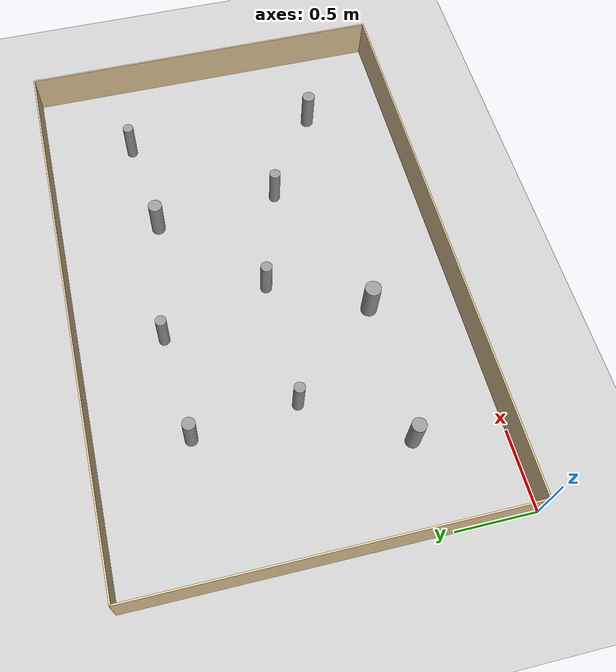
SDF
<sdf version="1.4">
 <world name="default">
  <scene><ambient>0.5 0.5 0.5 1.0</ambient><shadows>0</shadows></scene>
  <include><uri>model://ground_plane</uri></include>
  <include><uri>model://sun</uri></include>
  <model name="unit_cylinder1_1">
   <link name="link">
    <pose>0.565 0.565 0.14 0 -0 0</pose>
    <inertial>
     <mass>1</mass>
     <inertia><ixx>0.145833</ixx><ixy>0</ixy><ixz>0</ixz><iyy>0.145833</iyy><iyz>0</iyz><izz>0.125</izz></inertia>
    </inertial>
    <visual name="visual">
     <geometry><cylinder><radius>0.045</radius><length>0.28</length></cylinder></geometry>
     <material>
      <script><name>Gazebo/Grey</name><uri>file://media/materials/scripts/gazebo.material</uri></script>
      <ambient>0.3 0.3 0.3 1</ambient>
      <diffuse>0.7 0.7 0.7 1</diffuse>
      <specular>0.01 0.01 0.01 1</specular>
      <emissive>0 0 0 1</emissive>
      <shader type="vertex"><normal_map>__default__</normal_map></shader>
     </material>
    </visual>
    <collision name="collision">
     <geometry><cylinder><radius>0.035</radius><length>0.28</length></cylinder></geometry>
     <surface>
      <friction>
       <ode><mu>1</mu><mu2>1</mu2><fdir1>0 0 0</fdir1><slip1>0</slip1><slip2>0</slip2></ode>
       <torsional>
        <coefficient>1</coefficient>
        <patch_radius>0</patch_radius>
        <surface_radius>0</surface_radius>
        <use_patch_radius>1</use_patch_radius>
        <ode><slip>0</slip></ode>
       </torsional>
      </friction>
      <bounce><restitution_coefficient>0</restitution_coefficient><threshold>1e+06</threshold></bounce>
      <contact>
       <collide_without_contact>0</collide_without_contact>
       <collide_without_contact_bitmask>1</collide_without_contact_bitmask>
       <collide_bitmask>1</collide_bitmask>
       <ode>
        <soft_cfm>0</soft_cfm>
        <soft_erp>0.2</soft_erp>
        <kp>1e+13</kp>
        <kd>1</kd>
        <max_vel>0.01</max_vel>
        <min_depth>0</min_depth>
       </ode>
       <bullet>
        <split_impulse>1</split_impulse>
        <split_impulse_penetration_threshold>-0.01</split_impulse_penetration_threshold>
        <soft_cfm>0</soft_cfm>
        <soft_erp>0.2</soft_erp>
        <kp>1e+13</kp>
        <kd>1</kd>
       </bullet>
      </contact>
     </surface>
    </collision>
   </link>
   <static>1</static>
  </model>
  <model name="unit_cylinder1_2">
   <link name="link">
    <pose>1.47 0.565 0.14 0 -0 0</pose>
    <inertial>
     <mass>1</mass>
     <inertia><ixx>0.145833</ixx><ixy>0</ixy><ixz>0</ixz><iyy>0.145833</iyy><iyz>0</iyz><izz>0.125</izz></inertia>
    </inertial>
    <visual name="visual">
     <geometry><cylinder><radius>0.052</radius><length>0.28</length></cylinder></geometry>
     <material>
      <script><name>Gazebo/Grey</name><uri>file://media/materials/scripts/gazebo.material</uri></script>
      <ambient>0.3 0.3 0.3 1</ambient>
      <diffuse>0.7 0.7 0.7 1</diffuse>
      <specular>0.01 0.01 0.01 1</specular>
      <emissive>0 0 0 1</emissive>
      <shader type="vertex"><normal_map>__default__</normal_map></shader>
     </material>
    </visual>
    <collision name="collision">
     <geometry><cylinder><radius>0.035</radius><length>0.28</length></cylinder></geometry>
     <surface>
      <friction>
       <ode><mu>1</mu><mu2>1</mu2><fdir1>0 0 0</fdir1><slip1>0</slip1><slip2>0</slip2></ode>
       <torsional>
        <coefficient>1</coefficient>
        <patch_radius>0</patch_radius>
        <surface_radius>0</surface_radius>
        <use_patch_radius>1</use_patch_radius>
        <ode><slip>0</slip></ode>
       </torsional>
      </friction>
      <bounce><restitution_coefficient>0</restitution_coefficient><threshold>1e+06</threshold></bounce>
      <contact>
       <collide_without_contact>0</collide_without_contact>
       <collide_without_contact_bitmask>1</collide_without_contact_bitmask>
       <collide_bitmask>1</collide_bitmask>
       <ode>
        <soft_cfm>0</soft_cfm>
        <soft_erp>0.2</soft_erp>
        <kp>1e+13</kp>
        <kd>1</kd>
        <max_vel>0.01</max_vel>
        <min_depth>0</min_depth>
       </ode>
       <bullet>
        <split_impulse>1</split_impulse>
        <split_impulse_penetration_threshold>-0.01</split_impulse_penetration_threshold>
        <soft_cfm>0</soft_cfm>
        <soft_erp>0.2</soft_erp>
        <kp>1e+13</kp>
        <kd>1</kd>
       </bullet>
      </contact>
     </surface>
    </collision>
   </link>
   <static>1</static>
  </model>
  <model name="unit_cylinder1_3">
   <link name="link">
    <pose>3.04 0.565 0.14 0 -0 0</pose>
    <inertial>
     <mass>1</mass>
     <inertia><ixx>0.145833</ixx><ixy>0</ixy><ixz>0</ixz><iyy>0.145833</iyy><iyz>0</iyz><izz>0.125</izz></inertia>
    </inertial>
    <visual name="visual">
     <geometry><cylinder><radius>0.042</radius><length>0.28</length></cylinder></geometry>
     <material>
      <script><name>Gazebo/Grey</name><uri>file://media/materials/scripts/gazebo.material</uri></script>
      <ambient>0.3 0.3 0.3 1</ambient>
      <diffuse>0.7 0.7 0.7 1</diffuse>
      <specular>0.01 0.01 0.01 1</specular>
      <emissive>0 0 0 1</emissive>
      <shader type="vertex"><normal_map>__default__</normal_map></shader>
     </material>
    </visual>
    <collision name="collision">
     <geometry><cylinder><radius>0.035</radius><length>0.28</length></cylinder></geometry>
     <surface>
      <friction>
       <ode><mu>1</mu><mu2>1</mu2><fdir1>0 0 0</fdir1><slip1>0</slip1><slip2>0</slip2></ode>
       <torsional>
        <coefficient>1</coefficient>
        <patch_radius>0</patch_radius>
        <surface_radius>0</surface_radius>
        <use_patch_radius>1</use_patch_radius>
        <ode><slip>0</slip></ode>
       </torsional>
      </friction>
      <bounce><restitution_coefficient>0</restitution_coefficient><threshold>1e+06</threshold></bounce>
      <contact>
       <collide_without_contact>0</collide_without_contact>
       <collide_without_contact_bitmask>1</collide_without_contact_bitmask>
       <collide_bitmask>1</collide_bitmask>
       <ode>
        <soft_cfm>0</soft_cfm>
        <soft_erp>0.2</soft_erp>
        <kp>1e+13</kp>
        <kd>1</kd>
        <max_vel>0.01</max_vel>
        <min_depth>0</min_depth>
       </ode>
       <bullet>
        <split_impulse>1</split_impulse>
        <split_impulse_penetration_threshold>-0.01</split_impulse_penetration_threshold>
        <soft_cfm>0</soft_cfm>
        <soft_erp>0.2</soft_erp>
        <kp>1e+13</kp>
        <kd>1</kd>
       </bullet>
      </contact>
     </surface>
    </collision>
   </link>
   <static>1</static>
  </model>
  <model name="unit_cylinder1_4">
   <link name="link">
    <pose>0.94 1.17 0.14 0 -0 0</pose>
    <inertial>
     <mass>1</mass>
     <inertia><ixx>0.145833</ixx><ixy>0</ixy><ixz>0</ixz><iyy>0.145833</iyy><iyz>0</iyz><izz>0.125</izz></inertia>
    </inertial>
    <visual name="visual">
     <geometry><cylinder><radius>0.035</radius><length>0.28</length></cylinder></geometry>
     <material>
      <script><name>Gazebo/Grey</name><uri>file://media/materials/scripts/gazebo.material</uri></script>
      <ambient>0.3 0.3 0.3 1</ambient>
      <diffuse>0.7 0.7 0.7 1</diffuse>
      <specular>0.01 0.01 0.01 1</specular>
      <emissive>0 0 0 1</emissive>
      <shader type="vertex"><normal_map>__default__</normal_map></shader>
     </material>
    </visual>
    <collision name="collision">
     <geometry><cylinder><radius>0.035</radius><length>0.28</length></cylinder></geometry>
     <surface>
      <friction>
       <ode><mu>1</mu><mu2>1</mu2><fdir1>0 0 0</fdir1><slip1>0</slip1><slip2>0</slip2></ode>
       <torsional>
        <coefficient>1</coefficient>
        <patch_radius>0</patch_radius>
        <surface_radius>0</surface_radius>
        <use_patch_radius>1</use_patch_radius>
        <ode><slip>0</slip></ode>
       </torsional>
      </friction>
      <bounce><restitution_coefficient>0</restitution_coefficient><threshold>1e+06</threshold></bounce>
      <contact>
       <collide_without_contact>0</collide_without_contact>
       <collide_without_contact_bitmask>1</collide_without_contact_bitmask>
       <collide_bitmask>1</collide_bitmask>
       <ode>
        <soft_cfm>0</soft_cfm>
        <soft_erp>0.2</soft_erp>
        <kp>1e+13</kp>
        <kd>1</kd>
        <max_vel>0.01</max_vel>
        <min_depth>0</min_depth>
       </ode>
       <bullet>
        <split_impulse>1</split_impulse>
        <split_impulse_penetration_threshold>-0.01</split_impulse_penetration_threshold>
        <soft_cfm>0</soft_cfm>
        <soft_erp>0.2</soft_erp>
        <kp>1e+13</kp>
        <kd>1</kd>
       </bullet>
      </contact>
     </surface>
    </collision>
   </link>
   <static>1</static>
  </model>
  <model name="unit_cylinder1_5">
   <link name="link">
    <pose>1.77 1.17 0.14 0 -0 0</pose>
    <inertial>
     <mass>1</mass>
     <inertia><ixx>0.145833</ixx><ixy>0</ixy><ixz>0</ixz><iyy>0.145833</iyy><iyz>0</iyz><izz>0.125</izz></inertia>
    </inertial>
    <visual name="visual">
     <geometry><cylinder><radius>0.037</radius><length>0.28</length></cylinder></geometry>
     <material>
      <script><name>Gazebo/Grey</name><uri>file://media/materials/scripts/gazebo.material</uri></script>
      <ambient>0.3 0.3 0.3 1</ambient>
      <diffuse>0.7 0.7 0.7 1</diffuse>
      <specular>0.01 0.01 0.01 1</specular>
      <emissive>0 0 0 1</emissive>
      <shader type="vertex"><normal_map>__default__</normal_map></shader>
     </material>
    </visual>
    <collision name="collision">
     <geometry><cylinder><radius>0.035</radius><length>0.28</length></cylinder></geometry>
     <surface>
      <friction>
       <ode><mu>1</mu><mu2>1</mu2><fdir1>0 0 0</fdir1><slip1>0</slip1><slip2>0</slip2></ode>
       <torsional>
        <coefficient>1</coefficient>
        <patch_radius>0</patch_radius>
        <surface_radius>0</surface_radius>
        <use_patch_radius>1</use_patch_radius>
        <ode><slip>0</slip></ode>
       </torsional>
      </friction>
      <bounce><restitution_coefficient>0</restitution_coefficient><threshold>1e+06</threshold></bounce>
      <contact>
       <collide_without_contact>0</collide_without_contact>
       <collide_without_contact_bitmask>1</collide_without_contact_bitmask>
       <collide_bitmask>1</collide_bitmask>
       <ode>
        <soft_cfm>0</soft_cfm>
        <soft_erp>0.2</soft_erp>
        <kp>1e+13</kp>
        <kd>1</kd>
        <max_vel>0.01</max_vel>
        <min_depth>0</min_depth>
       </ode>
       <bullet>
        <split_impulse>1</split_impulse>
        <split_impulse_penetration_threshold>-0.01</split_impulse_penetration_threshold>
        <soft_cfm>0</soft_cfm>
        <soft_erp>0.2</soft_erp>
        <kp>1e+13</kp>
        <kd>1</kd>
       </bullet>
      </contact>
     </surface>
    </collision>
   </link>
   <static>1</static>
  </model>
  <model name="unit_cylinder1_6">
   <link name="link">
    <pose>2.45 0.95 0.14 0 -0 0</pose>
    <inertial>
     <mass>1</mass>
     <inertia><ixx>0.145833</ixx><ixy>0</ixy><ixz>0</ixz><iyy>0.145833</iyy><iyz>0</iyz><izz>0.125</izz></inertia>
    </inertial>
    <visual name="visual">
     <geometry><cylinder><radius>0.036</radius><length>0.28</length></cylinder></geometry>
     <material>
      <script><name>Gazebo/Grey</name><uri>file://media/materials/scripts/gazebo.material</uri></script>
      <ambient>0.3 0.3 0.3 1</ambient>
      <diffuse>0.7 0.7 0.7 1</diffuse>
      <specular>0.01 0.01 0.01 1</specular>
      <emissive>0 0 0 1</emissive>
      <shader type="vertex"><normal_map>__default__</normal_map></shader>
     </material>
    </visual>
    <collision name="collision">
     <geometry><cylinder><radius>0.035</radius><length>0.28</length></cylinder></geometry>
     <surface>
      <friction>
       <ode><mu>1</mu><mu2>1</mu2><fdir1>0 0 0</fdir1><slip1>0</slip1><slip2>0</slip2></ode>
       <torsional>
        <coefficient>1</coefficient>
        <patch_radius>0</patch_radius>
        <surface_radius>0</surface_radius>
        <use_patch_radius>1</use_patch_radius>
        <ode><slip>0</slip></ode>
       </torsional>
      </friction>
      <bounce><restitution_coefficient>0</restitution_coefficient><threshold>1e+06</threshold></bounce>
      <contact>
       <collide_without_contact>0</collide_without_contact>
       <collide_without_contact_bitmask>1</collide_without_contact_bitmask>
       <collide_bitmask>1</collide_bitmask>
       <ode>
        <soft_cfm>0</soft_cfm>
        <soft_erp>0.2</soft_erp>
        <kp>1e+13</kp>
        <kd>1</kd>
        <max_vel>0.01</max_vel>
        <min_depth>0</min_depth>
       </ode>
       <bullet>
        <split_impulse>1</split_impulse>
        <split_impulse_penetration_threshold>-0.01</split_impulse_penetration_threshold>
        <soft_cfm>0</soft_cfm>
        <soft_erp>0.2</soft_erp>
        <kp>1e+13</kp>
        <kd>1</kd>
       </bullet>
      </contact>
     </surface>
    </collision>
   </link>
   <static>1</static>
  </model>
  <model name="unit_cylinder1_7">
   <link name="link">
    <pose>0.87 1.84 0.14 0 -0 0</pose>
    <inertial>
     <mass>1</mass>
     <inertia><ixx>0.145833</ixx><ixy>0</ixy><ixz>0</ixz><iyy>0.145833</iyy><iyz>0</iyz><izz>0.125</izz></inertia>
    </inertial>
    <visual name="visual">
     <geometry><cylinder><radius>0.040</radius><length>0.28</length></cylinder></geometry>
     <material>
      <script><name>Gazebo/Grey</name><uri>file://media/materials/scripts/gazebo.material</uri></script>
      <ambient>0.3 0.3 0.3 1</ambient>
      <diffuse>0.7 0.7 0.7 1</diffuse>
      <specular>0.01 0.01 0.01 1</specular>
      <emissive>0 0 0 1</emissive>
      <shader type="vertex"><normal_map>__default__</normal_map></shader>
     </material>
    </visual>
    <collision name="collision">
     <geometry><cylinder><radius>0.035</radius><length>0.28</length></cylinder></geometry>
     <surface>
      <friction>
       <ode><mu>1</mu><mu2>1</mu2><fdir1>0 0 0</fdir1><slip1>0</slip1><slip2>0</slip2></ode>
       <torsional>
        <coefficient>1</coefficient>
        <patch_radius>0</patch_radius>
        <surface_radius>0</surface_radius>
        <use_patch_radius>1</use_patch_radius>
        <ode><slip>0</slip></ode>
       </torsional>
      </friction>
      <bounce><restitution_coefficient>0</restitution_coefficient><threshold>1e+06</threshold></bounce>
      <contact>
       <collide_without_contact>0</collide_without_contact>
       <collide_without_contact_bitmask>1</collide_without_contact_bitmask>
       <collide_bitmask>1</collide_bitmask>
       <ode>
        <soft_cfm>0</soft_cfm>
        <soft_erp>0.2</soft_erp>
        <kp>1e+13</kp>
        <kd>1</kd>
        <max_vel>0.01</max_vel>
        <min_depth>0</min_depth>
       </ode>
       <bullet>
        <split_impulse>1</split_impulse>
        <split_impulse_penetration_threshold>-0.01</split_impulse_penetration_threshold>
        <soft_cfm>0</soft_cfm>
        <soft_erp>0.2</soft_erp>
        <kp>1e+13</kp>
        <kd>1</kd>
       </bullet>
      </contact>
     </surface>
    </collision>
   </link>
   <static>1</static>
  </model>
  <model name="unit_cylinder1_8">
   <link name="link">
    <pose>1.55 1.88 0.14 0 -0 0</pose>
    <inertial>
     <mass>1</mass>
     <inertia><ixx>0.145833</ixx><ixy>0</ixy><ixz>0</ixz><iyy>0.145833</iyy><iyz>0</iyz><izz>0.125</izz></inertia>
    </inertial>
    <visual name="visual">
     <geometry><cylinder><radius>0.035</radius><length>0.28</length></cylinder></geometry>
     <material>
      <script><name>Gazebo/Grey</name><uri>file://media/materials/scripts/gazebo.material</uri></script>
      <ambient>0.3 0.3 0.3 1</ambient>
      <diffuse>0.7 0.7 0.7 1</diffuse>
      <specular>0.01 0.01 0.01 1</specular>
      <emissive>0 0 0 1</emissive>
      <shader type="vertex"><normal_map>__default__</normal_map></shader>
     </material>
    </visual>
    <collision name="collision">
     <geometry><cylinder><radius>0.035</radius><length>0.28</length></cylinder></geometry>
     <surface>
      <friction>
       <ode><mu>1</mu><mu2>1</mu2><fdir1>0 0 0</fdir1><slip1>0</slip1><slip2>0</slip2></ode>
       <torsional>
        <coefficient>1</coefficient>
        <patch_radius>0</patch_radius>
        <surface_radius>0</surface_radius>
        <use_patch_radius>1</use_patch_radius>
        <ode><slip>0</slip></ode>
       </torsional>
      </friction>
      <bounce><restitution_coefficient>0</restitution_coefficient><threshold>1e+06</threshold></bounce>
      <contact>
       <collide_without_contact>0</collide_without_contact>
       <collide_without_contact_bitmask>1</collide_without_contact_bitmask>
       <collide_bitmask>1</collide_bitmask>
       <ode>
        <soft_cfm>0</soft_cfm>
        <soft_erp>0.2</soft_erp>
        <kp>1e+13</kp>
        <kd>1</kd>
        <max_vel>0.01</max_vel>
        <min_depth>0</min_depth>
       </ode>
       <bullet>
        <split_impulse>1</split_impulse>
        <split_impulse_penetration_threshold>-0.01</split_impulse_penetration_threshold>
        <soft_cfm>0</soft_cfm>
        <soft_erp>0.2</soft_erp>
        <kp>1e+13</kp>
        <kd>1</kd>
       </bullet>
      </contact>
     </surface>
    </collision>
   </link>
   <static>1</static>
  </model>
  <model name="unit_cylinder1_9">
   <link name="link">
    <pose>2.38 1.77 0.14 0 -0 0</pose>
    <inertial>
     <mass>1</mass>
     <inertia><ixx>0.145833</ixx><ixy>0</ixy><ixz>0</ixz><iyy>0.145833</iyy><iyz>0</iyz><izz>0.125</izz></inertia>
    </inertial>
    <visual name="visual">
     <geometry><cylinder><radius>0.045</radius><length>0.28</length></cylinder></geometry>
     <material>
      <script><name>Gazebo/Grey</name><uri>file://media/materials/scripts/gazebo.material</uri></script>
      <ambient>0.3 0.3 0.3 1</ambient>
      <diffuse>0.7 0.7 0.7 1</diffuse>
      <specular>0.01 0.01 0.01 1</specular>
      <emissive>0 0 0 1</emissive>
      <shader type="vertex"><normal_map>__default__</normal_map></shader>
     </material>
    </visual>
    <collision name="collision">
     <geometry><cylinder><radius>0.038</radius><length>0.28</length></cylinder></geometry>
     <surface>
      <friction>
       <ode><mu>1</mu><mu2>1</mu2><fdir1>0 0 0</fdir1><slip1>0</slip1><slip2>0</slip2></ode>
       <torsional>
        <coefficient>1</coefficient>
        <patch_radius>0</patch_radius>
        <surface_radius>0</surface_radius>
        <use_patch_radius>1</use_patch_radius>
        <ode><slip>0</slip></ode>
       </torsional>
      </friction>
      <bounce><restitution_coefficient>0</restitution_coefficient><threshold>1e+06</threshold></bounce>
      <contact>
       <collide_without_contact>0</collide_without_contact>
       <collide_without_contact_bitmask>1</collide_without_contact_bitmask>
       <collide_bitmask>1</collide_bitmask>
       <ode>
        <soft_cfm>0</soft_cfm>
        <soft_erp>0.2</soft_erp>
        <kp>1e+13</kp>
        <kd>1</kd>
        <max_vel>0.01</max_vel>
        <min_depth>0</min_depth>
       </ode>
       <bullet>
        <split_impulse>1</split_impulse>
        <split_impulse_penetration_threshold>-0.01</split_impulse_penetration_threshold>
        <soft_cfm>0</soft_cfm>
        <soft_erp>0.2</soft_erp>
        <kp>1e+13</kp>
        <kd>1</kd>
       </bullet>
      </contact>
     </surface>
    </collision>
   </link>
   <static>1</static>
  </model>
  <model name="unit_cylinder1_10">
   <link name="link">
    <pose>3.05 1.84 0.14 0 -0 0</pose>
    <inertial>
     <mass>1</mass>
     <inertia><ixx>0.145833</ixx><ixy>0</ixy><ixz>0</ixz><iyy>0.145833</iyy><iyz>0</iyz><izz>0.125</izz></inertia>
    </inertial>
    <visual name="visual">
     <geometry><cylinder><radius>0.035</radius><length>0.28</length></cylinder></geometry>
     <material>
      <script><name>Gazebo/Grey</name><uri>file://media/materials/scripts/gazebo.material</uri></script>
      <ambient>0.3 0.3 0.3 1</ambient>
      <diffuse>0.7 0.7 0.7 1</diffuse>
      <specular>0.01 0.01 0.01 1</specular>
      <emissive>0 0 0 1</emissive>
      <shader type="vertex"><normal_map>__default__</normal_map></shader>
     </material>
    </visual>
    <collision name="collision">
     <geometry><cylinder><radius>0.035</radius><length>0.28</length></cylinder></geometry>
     <surface>
      <friction>
       <ode><mu>1</mu><mu2>1</mu2><fdir1>0 0 0</fdir1><slip1>0</slip1><slip2>0</slip2></ode>
       <torsional>
        <coefficient>1</coefficient>
        <patch_radius>0</patch_radius>
        <surface_radius>0</surface_radius>
        <use_patch_radius>1</use_patch_radius>
        <ode><slip>0</slip></ode>
       </torsional>
      </friction>
      <bounce><restitution_coefficient>0</restitution_coefficient><threshold>1e+06</threshold></bounce>
      <contact>
       <collide_without_contact>0</collide_without_contact>
       <collide_without_contact_bitmask>1</collide_without_contact_bitmask>
       <collide_bitmask>1</collide_bitmask>
       <ode>
        <soft_cfm>0</soft_cfm>
        <soft_erp>0.2</soft_erp>
        <kp>1e+13</kp>
        <kd>1</kd>
        <max_vel>0.01</max_vel>
        <min_depth>0</min_depth>
       </ode>
       <bullet>
        <split_impulse>1</split_impulse>
        <split_impulse_penetration_threshold>-0.01</split_impulse_penetration_threshold>
        <soft_cfm>0</soft_cfm>
        <soft_erp>0.2</soft_erp>
        <kp>1e+13</kp>
        <kd>1</kd>
       </bullet>
      </contact>
     </surface>
    </collision>
   </link>
   <static>1</static>
  </model>
  <model name="outer_box">
   <pose>1.81 1.21 0 0 -0 0</pose>
   <link name="Wall_0">
    <collision name="Wall_0_Collision">
     <geometry><box><size>3.63 0.01 0.28</size></box></geometry>
     <pose>0 0 0.14 0 -0 0</pose>
    </collision>
    <visual name="Wall_0_Visual">
     <pose>0 0 0.14 0 -0 0</pose>
     <geometry><box><size>3.63 0.01 0.28</size></box></geometry>
     <material>
      <script><uri>file://media/materials/scripts/gazebo.material</uri><name>Gazebo/Grey</name></script>
      <ambient>0.921569 0.807843 0.615686 1</ambient>
     </material>
     <meta><layer>0</layer></meta>
    </visual>
    <pose>0 1.21 0 0 -0 0</pose>
   </link>
   <link name="Wall_2">
    <collision name="Wall_2_Collision">
     <geometry><box><size>2.43 0.01 0.28</size></box></geometry>
     <pose>0 0 0.14 0 -0 0</pose>
    </collision>
    <visual name="Wall_2_Visual">
     <pose>0 0 0.14 0 -0 0</pose>
     <geometry><box><size>2.43 0.01 0.28</size></box></geometry>
     <material>
      <script><uri>file://media/materials/scripts/gazebo.material</uri><name>Gazebo/Grey</name></script>
      <ambient>0.921569 0.807843 0.615686 1</ambient>
     </material>
     <meta><layer>0</layer></meta>
    </visual>
    <pose>1.81 0 0 0 0 -1.5708</pose>
   </link>
   <link name="Wall_4">
    <collision name="Wall_4_Collision">
     <geometry><box><size>3.63 0.01 0.28</size></box></geometry>
     <pose>0 0 0.14 0 -0 0</pose>
    </collision>
    <visual name="Wall_4_Visual">
     <pose>0 0 0.14 0 -0 0</pose>
     <geometry><box><size>3.63 0.01 0.28</size></box></geometry>
     <material>
      <script><uri>file://media/materials/scripts/gazebo.material</uri><name>Gazebo/Grey</name></script>
      <ambient>0.921569 0.807843 0.615686 1</ambient>
     </material>
     <meta><layer>0</layer></meta>
    </visual>
    <pose>0 -1.21 0 0 -0 3.14159</pose>
   </link>
   <link name="Wall_6">
    <collision name="Wall_6_Collision">
     <geometry><box><size>2.43 0.01 0.28</size></box></geometry>
     <pose>0 0 0.14 0 -0 0</pose>
    </collision>
    <visual name="Wall_6_Visual">
     <pose>0 0 0.14 0 -0 0</pose>
     <geometry><box><size>2.43 0.01 0.28</size></box></geometry>
     <material>
      <script><uri>file://media/materials/scripts/gazebo.material</uri><name>Gazebo/Grey</name></script>
      <ambient>0.921569 0.807843 0.615686 1</ambient>
     </material>
     <meta><layer>0</layer></meta>
    </visual>
    <pose>-1.81 0 0 0 -0 1.5708</pose>
   </link>
   <static>1</static>
  </model>
 </world>
</sdf>
